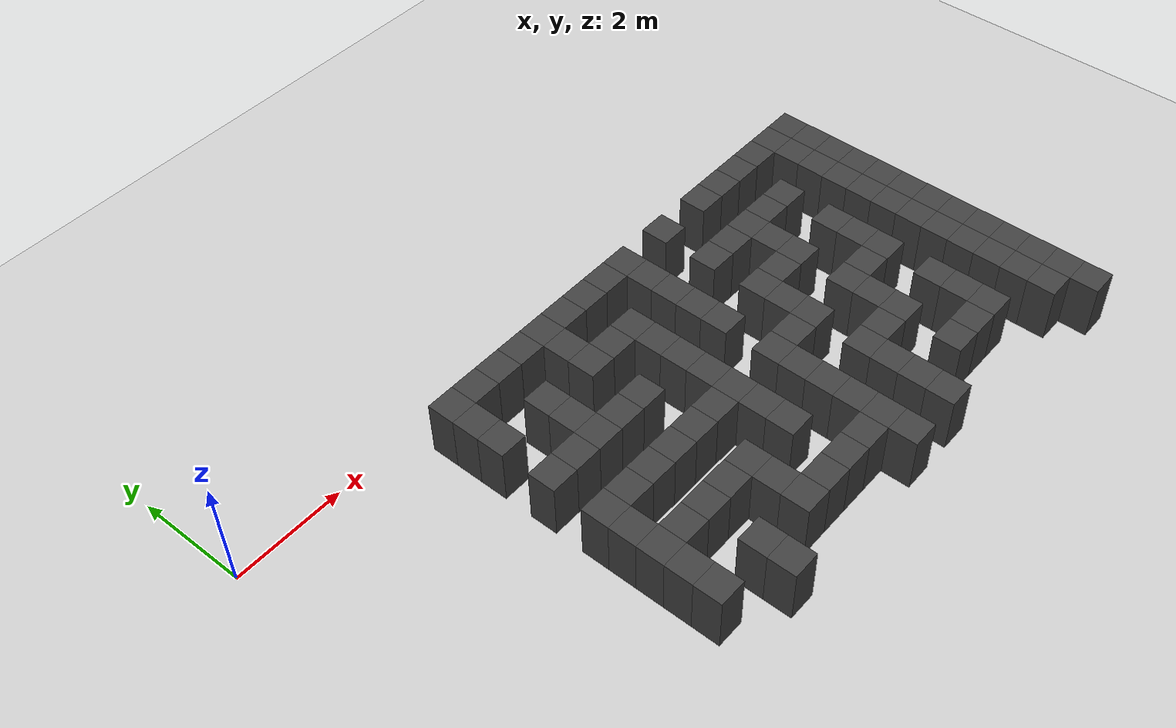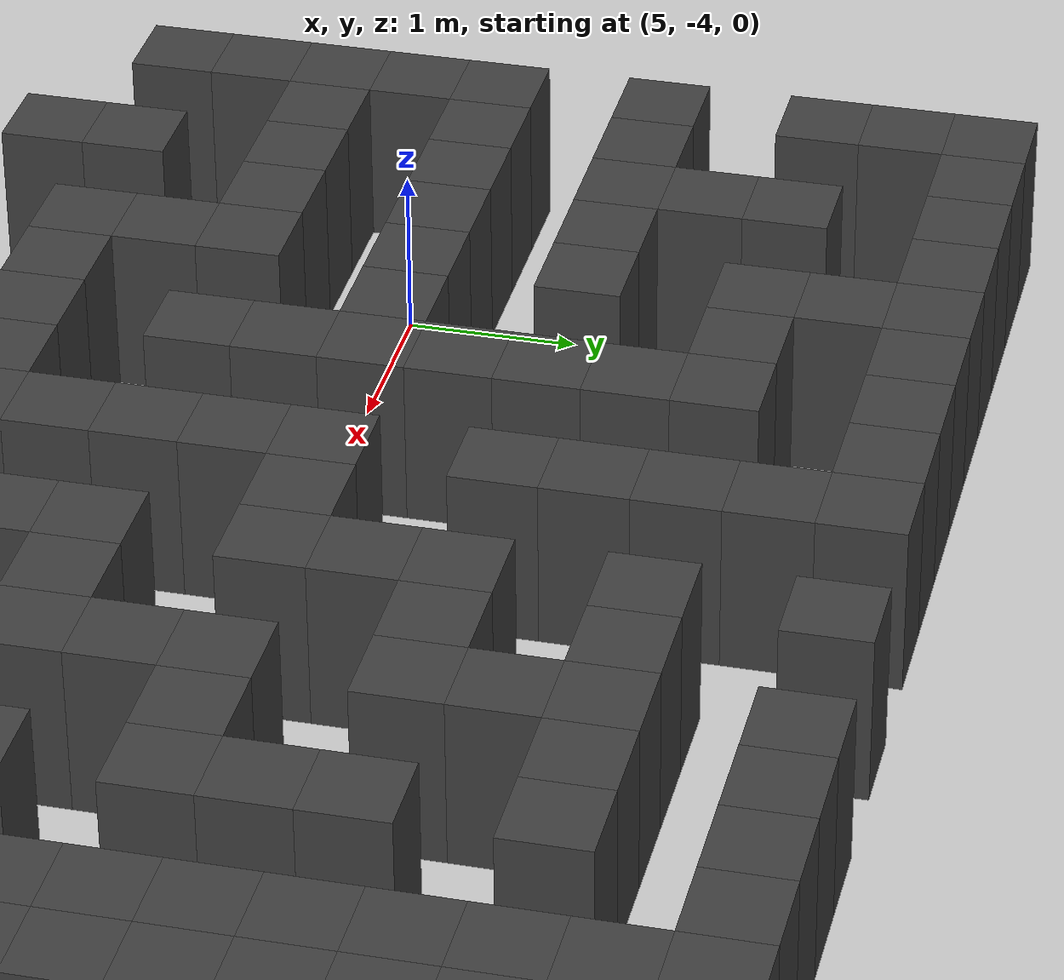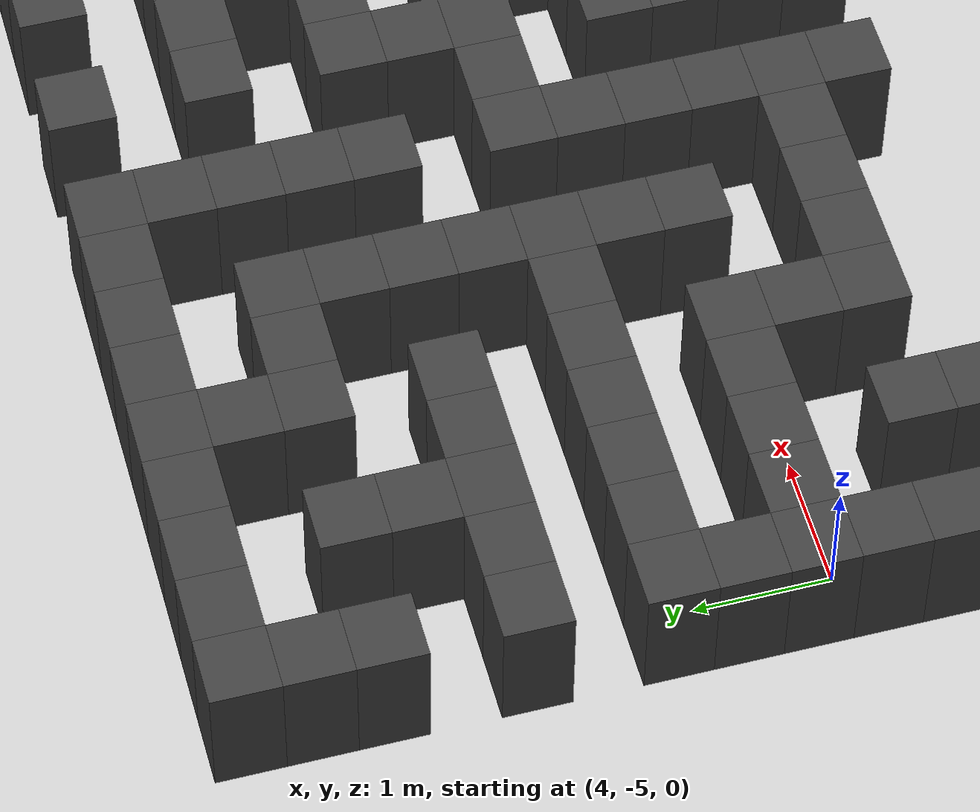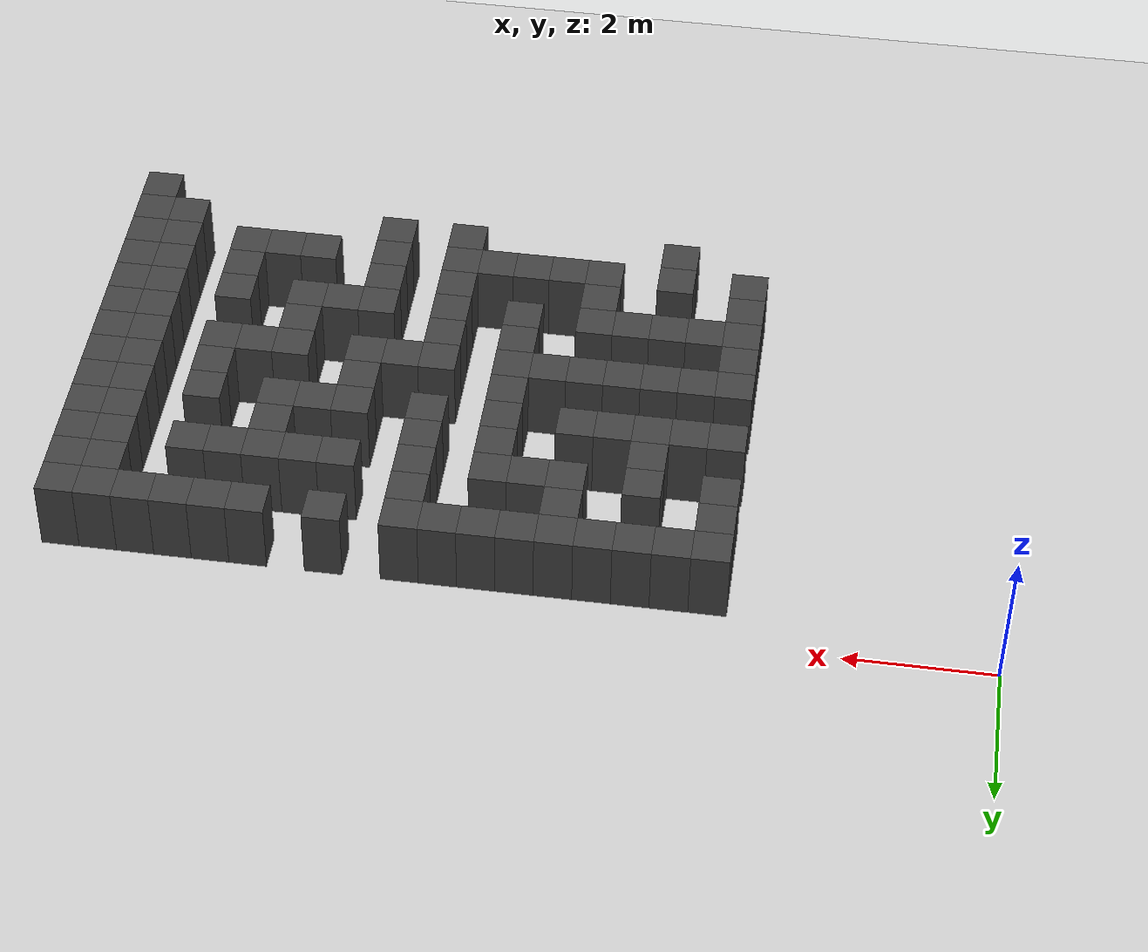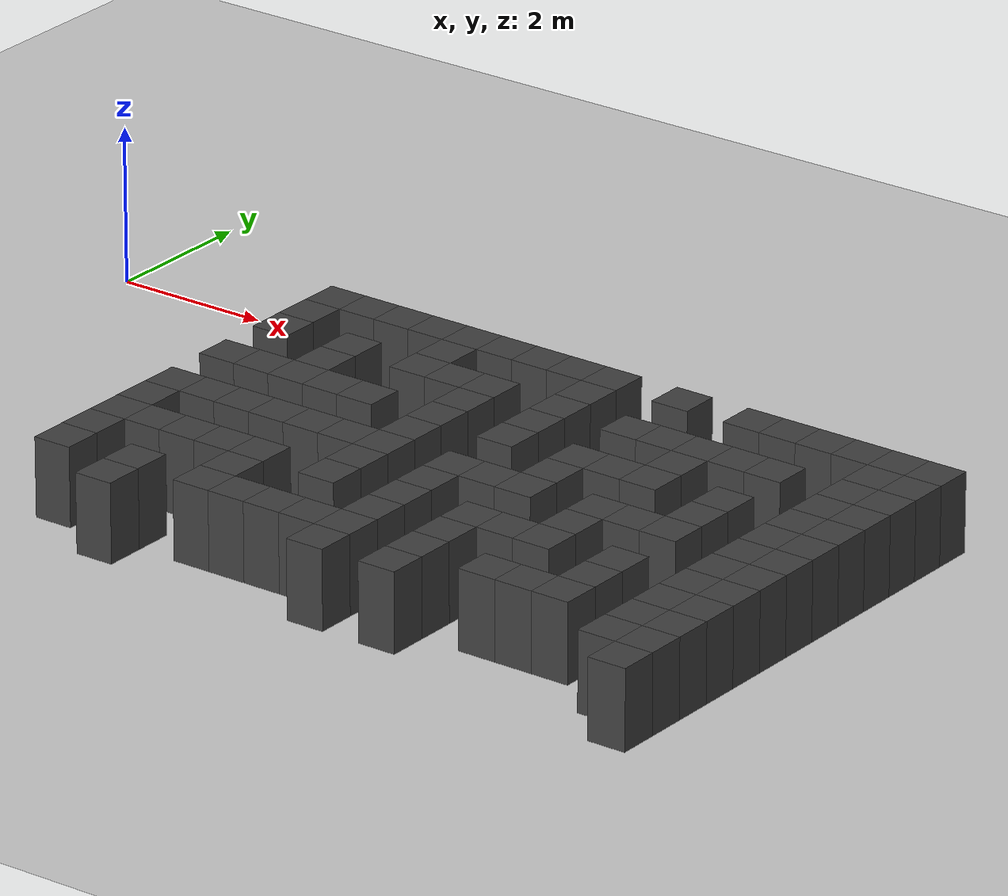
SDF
<sdf version="1.7">
 <world name="map_18313">
  <model name="ground_plane">
   <static>true</static>
   <link name="link">
    <collision name="collision">
     <geometry><plane><normal>0 0 1</normal><size>200 200</size></plane></geometry>
    </collision>
    <visual name="visual">
     <geometry><plane><normal>0 0 1</normal><size>200 200</size></plane></geometry>
     <material><ambient>0.8 0.8 0.8 1</ambient><diffuse>0.8 0.8 0.8 1</diffuse></material>
    </visual>
   </link>
  </model>
  <model name="maze_environment">
   <static>true</static>
   <link name="wall_677">
    <pose>3.750 -0.750 0.500 0 0 0</pose>
    <collision name="col"><geometry><box><size>0.5 0.5 1.0</size></box></geometry></collision>
    <visual name="vis">
     <geometry><box><size>0.5 0.5 1.0</size></box></geometry>
     <material><ambient>0.15 0.15 0.15 1</ambient><diffuse>0.25 0.25 0.25 1</diffuse></material>
    </visual>
   </link>
   <link name="wall_678">
    <pose>4.250 -0.750 0.500 0 0 0</pose>
    <collision name="col"><geometry><box><size>0.5 0.5 1.0</size></box></geometry></collision>
    <visual name="vis">
     <geometry><box><size>0.5 0.5 1.0</size></box></geometry>
     <material><ambient>0.15 0.15 0.15 1</ambient><diffuse>0.25 0.25 0.25 1</diffuse></material>
    </visual>
   </link>
   <link name="wall_679">
    <pose>4.750 -0.750 0.500 0 0 0</pose>
    <collision name="col"><geometry><box><size>0.5 0.5 1.0</size></box></geometry></collision>
    <visual name="vis">
     <geometry><box><size>0.5 0.5 1.0</size></box></geometry>
     <material><ambient>0.15 0.15 0.15 1</ambient><diffuse>0.25 0.25 0.25 1</diffuse></material>
    </visual>
   </link>
   <link name="wall_680">
    <pose>5.250 -0.750 0.500 0 0 0</pose>
    <collision name="col"><geometry><box><size>0.5 0.5 1.0</size></box></geometry></collision>
    <visual name="vis">
     <geometry><box><size>0.5 0.5 1.0</size></box></geometry>
     <material><ambient>0.15 0.15 0.15 1</ambient><diffuse>0.25 0.25 0.25 1</diffuse></material>
    </visual>
   </link>
   <link name="wall_681">
    <pose>5.750 -0.750 0.500 0 0 0</pose>
    <collision name="col"><geometry><box><size>0.5 0.5 1.0</size></box></geometry></collision>
    <visual name="vis">
     <geometry><box><size>0.5 0.5 1.0</size></box></geometry>
     <material><ambient>0.15 0.15 0.15 1</ambient><diffuse>0.25 0.25 0.25 1</diffuse></material>
    </visual>
   </link>
   <link name="wall_682">
    <pose>6.250 -0.750 0.500 0 0 0</pose>
    <collision name="col"><geometry><box><size>0.5 0.5 1.0</size></box></geometry></collision>
    <visual name="vis">
     <geometry><box><size>0.5 0.5 1.0</size></box></geometry>
     <material><ambient>0.15 0.15 0.15 1</ambient><diffuse>0.25 0.25 0.25 1</diffuse></material>
    </visual>
   </link>
   <link name="wall_683">
    <pose>6.750 -0.750 0.500 0 0 0</pose>
    <collision name="col"><geometry><box><size>0.5 0.5 1.0</size></box></geometry></collision>
    <visual name="vis">
     <geometry><box><size>0.5 0.5 1.0</size></box></geometry>
     <material><ambient>0.15 0.15 0.15 1</ambient><diffuse>0.25 0.25 0.25 1</diffuse></material>
    </visual>
   </link>
   <link name="wall_684">
    <pose>7.250 -0.750 0.500 0 0 0</pose>
    <collision name="col"><geometry><box><size>0.5 0.5 1.0</size></box></geometry></collision>
    <visual name="vis">
     <geometry><box><size>0.5 0.5 1.0</size></box></geometry>
     <material><ambient>0.15 0.15 0.15 1</ambient><diffuse>0.25 0.25 0.25 1</diffuse></material>
    </visual>
   </link>
   <link name="wall_685">
    <pose>7.750 -0.750 0.500 0 0 0</pose>
    <collision name="col"><geometry><box><size>0.5 0.5 1.0</size></box></geometry></collision>
    <visual name="vis">
     <geometry><box><size>0.5 0.5 1.0</size></box></geometry>
     <material><ambient>0.15 0.15 0.15 1</ambient><diffuse>0.25 0.25 0.25 1</diffuse></material>
    </visual>
   </link>
   <link name="wall_686">
    <pose>8.750 -0.750 0.500 0 0 0</pose>
    <collision name="col"><geometry><box><size>0.5 0.5 1.0</size></box></geometry></collision>
    <visual name="vis">
     <geometry><box><size>0.5 0.5 1.0</size></box></geometry>
     <material><ambient>0.15 0.15 0.15 1</ambient><diffuse>0.25 0.25 0.25 1</diffuse></material>
    </visual>
   </link>
   <link name="wall_687">
    <pose>9.750 -0.750 0.500 0 0 0</pose>
    <collision name="col"><geometry><box><size>0.5 0.5 1.0</size></box></geometry></collision>
    <visual name="vis">
     <geometry><box><size>0.5 0.5 1.0</size></box></geometry>
     <material><ambient>0.15 0.15 0.15 1</ambient><diffuse>0.25 0.25 0.25 1</diffuse></material>
    </visual>
   </link>
   <link name="wall_688">
    <pose>10.250 -0.750 0.500 0 0 0</pose>
    <collision name="col"><geometry><box><size>0.5 0.5 1.0</size></box></geometry></collision>
    <visual name="vis">
     <geometry><box><size>0.5 0.5 1.0</size></box></geometry>
     <material><ambient>0.15 0.15 0.15 1</ambient><diffuse>0.25 0.25 0.25 1</diffuse></material>
    </visual>
   </link>
   <link name="wall_689">
    <pose>10.750 -0.750 0.500 0 0 0</pose>
    <collision name="col"><geometry><box><size>0.5 0.5 1.0</size></box></geometry></collision>
    <visual name="vis">
     <geometry><box><size>0.5 0.5 1.0</size></box></geometry>
     <material><ambient>0.15 0.15 0.15 1</ambient><diffuse>0.25 0.25 0.25 1</diffuse></material>
    </visual>
   </link>
   <link name="wall_690">
    <pose>11.250 -0.750 0.500 0 0 0</pose>
    <collision name="col"><geometry><box><size>0.5 0.5 1.0</size></box></geometry></collision>
    <visual name="vis">
     <geometry><box><size>0.5 0.5 1.0</size></box></geometry>
     <material><ambient>0.15 0.15 0.15 1</ambient><diffuse>0.25 0.25 0.25 1</diffuse></material>
    </visual>
   </link>
   <link name="wall_691">
    <pose>11.750 -0.750 0.500 0 0 0</pose>
    <collision name="col"><geometry><box><size>0.5 0.5 1.0</size></box></geometry></collision>
    <visual name="vis">
     <geometry><box><size>0.5 0.5 1.0</size></box></geometry>
     <material><ambient>0.15 0.15 0.15 1</ambient><diffuse>0.25 0.25 0.25 1</diffuse></material>
    </visual>
   </link>
   <link name="wall_692">
    <pose>12.250 -0.750 0.500 0 0 0</pose>
    <collision name="col"><geometry><box><size>0.5 0.5 1.0</size></box></geometry></collision>
    <visual name="vis">
     <geometry><box><size>0.5 0.5 1.0</size></box></geometry>
     <material><ambient>0.15 0.15 0.15 1</ambient><diffuse>0.25 0.25 0.25 1</diffuse></material>
    </visual>
   </link>
   <link name="wall_700">
    <pose>3.750 -1.250 0.500 0 0 0</pose>
    <collision name="col"><geometry><box><size>0.5 0.5 1.0</size></box></geometry></collision>
    <visual name="vis">
     <geometry><box><size>0.5 0.5 1.0</size></box></geometry>
     <material><ambient>0.15 0.15 0.15 1</ambient><diffuse>0.25 0.25 0.25 1</diffuse></material>
    </visual>
   </link>
   <link name="wall_701">
    <pose>5.750 -1.250 0.500 0 0 0</pose>
    <collision name="col"><geometry><box><size>0.5 0.5 1.0</size></box></geometry></collision>
    <visual name="vis">
     <geometry><box><size>0.5 0.5 1.0</size></box></geometry>
     <material><ambient>0.15 0.15 0.15 1</ambient><diffuse>0.25 0.25 0.25 1</diffuse></material>
    </visual>
   </link>
   <link name="wall_702">
    <pose>7.750 -1.250 0.500 0 0 0</pose>
    <collision name="col"><geometry><box><size>0.5 0.5 1.0</size></box></geometry></collision>
    <visual name="vis">
     <geometry><box><size>0.5 0.5 1.0</size></box></geometry>
     <material><ambient>0.15 0.15 0.15 1</ambient><diffuse>0.25 0.25 0.25 1</diffuse></material>
    </visual>
   </link>
   <link name="wall_703">
    <pose>11.750 -1.250 0.500 0 0 0</pose>
    <collision name="col"><geometry><box><size>0.5 0.5 1.0</size></box></geometry></collision>
    <visual name="vis">
     <geometry><box><size>0.5 0.5 1.0</size></box></geometry>
     <material><ambient>0.15 0.15 0.15 1</ambient><diffuse>0.25 0.25 0.25 1</diffuse></material>
    </visual>
   </link>
   <link name="wall_704">
    <pose>12.250 -1.250 0.500 0 0 0</pose>
    <collision name="col"><geometry><box><size>0.5 0.5 1.0</size></box></geometry></collision>
    <visual name="vis">
     <geometry><box><size>0.5 0.5 1.0</size></box></geometry>
     <material><ambient>0.15 0.15 0.15 1</ambient><diffuse>0.25 0.25 0.25 1</diffuse></material>
    </visual>
   </link>
   <link name="wall_729">
    <pose>3.750 -1.750 0.500 0 0 0</pose>
    <collision name="col"><geometry><box><size>0.5 0.5 1.0</size></box></geometry></collision>
    <visual name="vis">
     <geometry><box><size>0.5 0.5 1.0</size></box></geometry>
     <material><ambient>0.15 0.15 0.15 1</ambient><diffuse>0.25 0.25 0.25 1</diffuse></material>
    </visual>
   </link>
   <link name="wall_730">
    <pose>4.750 -1.750 0.500 0 0 0</pose>
    <collision name="col"><geometry><box><size>0.5 0.5 1.0</size></box></geometry></collision>
    <visual name="vis">
     <geometry><box><size>0.5 0.5 1.0</size></box></geometry>
     <material><ambient>0.15 0.15 0.15 1</ambient><diffuse>0.25 0.25 0.25 1</diffuse></material>
    </visual>
   </link>
   <link name="wall_731">
    <pose>5.750 -1.750 0.500 0 0 0</pose>
    <collision name="col"><geometry><box><size>0.5 0.5 1.0</size></box></geometry></collision>
    <visual name="vis">
     <geometry><box><size>0.5 0.5 1.0</size></box></geometry>
     <material><ambient>0.15 0.15 0.15 1</ambient><diffuse>0.25 0.25 0.25 1</diffuse></material>
    </visual>
   </link>
   <link name="wall_732">
    <pose>6.250 -1.750 0.500 0 0 0</pose>
    <collision name="col"><geometry><box><size>0.5 0.5 1.0</size></box></geometry></collision>
    <visual name="vis">
     <geometry><box><size>0.5 0.5 1.0</size></box></geometry>
     <material><ambient>0.15 0.15 0.15 1</ambient><diffuse>0.25 0.25 0.25 1</diffuse></material>
    </visual>
   </link>
   <link name="wall_733">
    <pose>6.750 -1.750 0.500 0 0 0</pose>
    <collision name="col"><geometry><box><size>0.5 0.5 1.0</size></box></geometry></collision>
    <visual name="vis">
     <geometry><box><size>0.5 0.5 1.0</size></box></geometry>
     <material><ambient>0.15 0.15 0.15 1</ambient><diffuse>0.25 0.25 0.25 1</diffuse></material>
    </visual>
   </link>
   <link name="wall_734">
    <pose>7.750 -1.750 0.500 0 0 0</pose>
    <collision name="col"><geometry><box><size>0.5 0.5 1.0</size></box></geometry></collision>
    <visual name="vis">
     <geometry><box><size>0.5 0.5 1.0</size></box></geometry>
     <material><ambient>0.15 0.15 0.15 1</ambient><diffuse>0.25 0.25 0.25 1</diffuse></material>
    </visual>
   </link>
   <link name="wall_735">
    <pose>8.750 -1.750 0.500 0 0 0</pose>
    <collision name="col"><geometry><box><size>0.5 0.5 1.0</size></box></geometry></collision>
    <visual name="vis">
     <geometry><box><size>0.5 0.5 1.0</size></box></geometry>
     <material><ambient>0.15 0.15 0.15 1</ambient><diffuse>0.25 0.25 0.25 1</diffuse></material>
    </visual>
   </link>
   <link name="wall_736">
    <pose>9.250 -1.750 0.500 0 0 0</pose>
    <collision name="col"><geometry><box><size>0.5 0.5 1.0</size></box></geometry></collision>
    <visual name="vis">
     <geometry><box><size>0.5 0.5 1.0</size></box></geometry>
     <material><ambient>0.15 0.15 0.15 1</ambient><diffuse>0.25 0.25 0.25 1</diffuse></material>
    </visual>
   </link>
   <link name="wall_737">
    <pose>9.750 -1.750 0.500 0 0 0</pose>
    <collision name="col"><geometry><box><size>0.5 0.5 1.0</size></box></geometry></collision>
    <visual name="vis">
     <geometry><box><size>0.5 0.5 1.0</size></box></geometry>
     <material><ambient>0.15 0.15 0.15 1</ambient><diffuse>0.25 0.25 0.25 1</diffuse></material>
    </visual>
   </link>
   <link name="wall_738">
    <pose>10.250 -1.750 0.500 0 0 0</pose>
    <collision name="col"><geometry><box><size>0.5 0.5 1.0</size></box></geometry></collision>
    <visual name="vis">
     <geometry><box><size>0.5 0.5 1.0</size></box></geometry>
     <material><ambient>0.15 0.15 0.15 1</ambient><diffuse>0.25 0.25 0.25 1</diffuse></material>
    </visual>
   </link>
   <link name="wall_739">
    <pose>10.750 -1.750 0.500 0 0 0</pose>
    <collision name="col"><geometry><box><size>0.5 0.5 1.0</size></box></geometry></collision>
    <visual name="vis">
     <geometry><box><size>0.5 0.5 1.0</size></box></geometry>
     <material><ambient>0.15 0.15 0.15 1</ambient><diffuse>0.25 0.25 0.25 1</diffuse></material>
    </visual>
   </link>
   <link name="wall_740">
    <pose>11.750 -1.750 0.500 0 0 0</pose>
    <collision name="col"><geometry><box><size>0.5 0.5 1.0</size></box></geometry></collision>
    <visual name="vis">
     <geometry><box><size>0.5 0.5 1.0</size></box></geometry>
     <material><ambient>0.15 0.15 0.15 1</ambient><diffuse>0.25 0.25 0.25 1</diffuse></material>
    </visual>
   </link>
   <link name="wall_741">
    <pose>12.250 -1.750 0.500 0 0 0</pose>
    <collision name="col"><geometry><box><size>0.5 0.5 1.0</size></box></geometry></collision>
    <visual name="vis">
     <geometry><box><size>0.5 0.5 1.0</size></box></geometry>
     <material><ambient>0.15 0.15 0.15 1</ambient><diffuse>0.25 0.25 0.25 1</diffuse></material>
    </visual>
   </link>
   <link name="wall_748">
    <pose>4.750 -2.250 0.500 0 0 0</pose>
    <collision name="col"><geometry><box><size>0.5 0.5 1.0</size></box></geometry></collision>
    <visual name="vis">
     <geometry><box><size>0.5 0.5 1.0</size></box></geometry>
     <material><ambient>0.15 0.15 0.15 1</ambient><diffuse>0.25 0.25 0.25 1</diffuse></material>
    </visual>
   </link>
   <link name="wall_749">
    <pose>6.750 -2.250 0.500 0 0 0</pose>
    <collision name="col"><geometry><box><size>0.5 0.5 1.0</size></box></geometry></collision>
    <visual name="vis">
     <geometry><box><size>0.5 0.5 1.0</size></box></geometry>
     <material><ambient>0.15 0.15 0.15 1</ambient><diffuse>0.25 0.25 0.25 1</diffuse></material>
    </visual>
   </link>
   <link name="wall_750">
    <pose>7.750 -2.250 0.500 0 0 0</pose>
    <collision name="col"><geometry><box><size>0.5 0.5 1.0</size></box></geometry></collision>
    <visual name="vis">
     <geometry><box><size>0.5 0.5 1.0</size></box></geometry>
     <material><ambient>0.15 0.15 0.15 1</ambient><diffuse>0.25 0.25 0.25 1</diffuse></material>
    </visual>
   </link>
   <link name="wall_751">
    <pose>9.750 -2.250 0.500 0 0 0</pose>
    <collision name="col"><geometry><box><size>0.5 0.5 1.0</size></box></geometry></collision>
    <visual name="vis">
     <geometry><box><size>0.5 0.5 1.0</size></box></geometry>
     <material><ambient>0.15 0.15 0.15 1</ambient><diffuse>0.25 0.25 0.25 1</diffuse></material>
    </visual>
   </link>
   <link name="wall_752">
    <pose>11.750 -2.250 0.500 0 0 0</pose>
    <collision name="col"><geometry><box><size>0.5 0.5 1.0</size></box></geometry></collision>
    <visual name="vis">
     <geometry><box><size>0.5 0.5 1.0</size></box></geometry>
     <material><ambient>0.15 0.15 0.15 1</ambient><diffuse>0.25 0.25 0.25 1</diffuse></material>
    </visual>
   </link>
   <link name="wall_753">
    <pose>12.250 -2.250 0.500 0 0 0</pose>
    <collision name="col"><geometry><box><size>0.5 0.5 1.0</size></box></geometry></collision>
    <visual name="vis">
     <geometry><box><size>0.5 0.5 1.0</size></box></geometry>
     <material><ambient>0.15 0.15 0.15 1</ambient><diffuse>0.25 0.25 0.25 1</diffuse></material>
    </visual>
   </link>
   <link name="wall_779">
    <pose>3.750 -2.750 0.500 0 0 0</pose>
    <collision name="col"><geometry><box><size>0.5 0.5 1.0</size></box></geometry></collision>
    <visual name="vis">
     <geometry><box><size>0.5 0.5 1.0</size></box></geometry>
     <material><ambient>0.15 0.15 0.15 1</ambient><diffuse>0.25 0.25 0.25 1</diffuse></material>
    </visual>
   </link>
   <link name="wall_780">
    <pose>4.250 -2.750 0.500 0 0 0</pose>
    <collision name="col"><geometry><box><size>0.5 0.5 1.0</size></box></geometry></collision>
    <visual name="vis">
     <geometry><box><size>0.5 0.5 1.0</size></box></geometry>
     <material><ambient>0.15 0.15 0.15 1</ambient><diffuse>0.25 0.25 0.25 1</diffuse></material>
    </visual>
   </link>
   <link name="wall_781">
    <pose>4.750 -2.750 0.500 0 0 0</pose>
    <collision name="col"><geometry><box><size>0.5 0.5 1.0</size></box></geometry></collision>
    <visual name="vis">
     <geometry><box><size>0.5 0.5 1.0</size></box></geometry>
     <material><ambient>0.15 0.15 0.15 1</ambient><diffuse>0.25 0.25 0.25 1</diffuse></material>
    </visual>
   </link>
   <link name="wall_782">
    <pose>5.250 -2.750 0.500 0 0 0</pose>
    <collision name="col"><geometry><box><size>0.5 0.5 1.0</size></box></geometry></collision>
    <visual name="vis">
     <geometry><box><size>0.5 0.5 1.0</size></box></geometry>
     <material><ambient>0.15 0.15 0.15 1</ambient><diffuse>0.25 0.25 0.25 1</diffuse></material>
    </visual>
   </link>
   <link name="wall_783">
    <pose>5.750 -2.750 0.500 0 0 0</pose>
    <collision name="col"><geometry><box><size>0.5 0.5 1.0</size></box></geometry></collision>
    <visual name="vis">
     <geometry><box><size>0.5 0.5 1.0</size></box></geometry>
     <material><ambient>0.15 0.15 0.15 1</ambient><diffuse>0.25 0.25 0.25 1</diffuse></material>
    </visual>
   </link>
   <link name="wall_784">
    <pose>6.750 -2.750 0.500 0 0 0</pose>
    <collision name="col"><geometry><box><size>0.5 0.5 1.0</size></box></geometry></collision>
    <visual name="vis">
     <geometry><box><size>0.5 0.5 1.0</size></box></geometry>
     <material><ambient>0.15 0.15 0.15 1</ambient><diffuse>0.25 0.25 0.25 1</diffuse></material>
    </visual>
   </link>
   <link name="wall_785">
    <pose>7.750 -2.750 0.500 0 0 0</pose>
    <collision name="col"><geometry><box><size>0.5 0.5 1.0</size></box></geometry></collision>
    <visual name="vis">
     <geometry><box><size>0.5 0.5 1.0</size></box></geometry>
     <material><ambient>0.15 0.15 0.15 1</ambient><diffuse>0.25 0.25 0.25 1</diffuse></material>
    </visual>
   </link>
   <link name="wall_786">
    <pose>8.750 -2.750 0.500 0 0 0</pose>
    <collision name="col"><geometry><box><size>0.5 0.5 1.0</size></box></geometry></collision>
    <visual name="vis">
     <geometry><box><size>0.5 0.5 1.0</size></box></geometry>
     <material><ambient>0.15 0.15 0.15 1</ambient><diffuse>0.25 0.25 0.25 1</diffuse></material>
    </visual>
   </link>
   <link name="wall_787">
    <pose>9.250 -2.750 0.500 0 0 0</pose>
    <collision name="col"><geometry><box><size>0.5 0.5 1.0</size></box></geometry></collision>
    <visual name="vis">
     <geometry><box><size>0.5 0.5 1.0</size></box></geometry>
     <material><ambient>0.15 0.15 0.15 1</ambient><diffuse>0.25 0.25 0.25 1</diffuse></material>
    </visual>
   </link>
   <link name="wall_788">
    <pose>9.750 -2.750 0.500 0 0 0</pose>
    <collision name="col"><geometry><box><size>0.5 0.5 1.0</size></box></geometry></collision>
    <visual name="vis">
     <geometry><box><size>0.5 0.5 1.0</size></box></geometry>
     <material><ambient>0.15 0.15 0.15 1</ambient><diffuse>0.25 0.25 0.25 1</diffuse></material>
    </visual>
   </link>
   <link name="wall_789">
    <pose>10.750 -2.750 0.500 0 0 0</pose>
    <collision name="col"><geometry><box><size>0.5 0.5 1.0</size></box></geometry></collision>
    <visual name="vis">
     <geometry><box><size>0.5 0.5 1.0</size></box></geometry>
     <material><ambient>0.15 0.15 0.15 1</ambient><diffuse>0.25 0.25 0.25 1</diffuse></material>
    </visual>
   </link>
   <link name="wall_790">
    <pose>11.750 -2.750 0.500 0 0 0</pose>
    <collision name="col"><geometry><box><size>0.5 0.5 1.0</size></box></geometry></collision>
    <visual name="vis">
     <geometry><box><size>0.5 0.5 1.0</size></box></geometry>
     <material><ambient>0.15 0.15 0.15 1</ambient><diffuse>0.25 0.25 0.25 1</diffuse></material>
    </visual>
   </link>
   <link name="wall_791">
    <pose>12.250 -2.750 0.500 0 0 0</pose>
    <collision name="col"><geometry><box><size>0.5 0.5 1.0</size></box></geometry></collision>
    <visual name="vis">
     <geometry><box><size>0.5 0.5 1.0</size></box></geometry>
     <material><ambient>0.15 0.15 0.15 1</ambient><diffuse>0.25 0.25 0.25 1</diffuse></material>
    </visual>
   </link>
   <link name="wall_800">
    <pose>6.750 -3.250 0.500 0 0 0</pose>
    <collision name="col"><geometry><box><size>0.5 0.5 1.0</size></box></geometry></collision>
    <visual name="vis">
     <geometry><box><size>0.5 0.5 1.0</size></box></geometry>
     <material><ambient>0.15 0.15 0.15 1</ambient><diffuse>0.25 0.25 0.25 1</diffuse></material>
    </visual>
   </link>
   <link name="wall_801">
    <pose>8.750 -3.250 0.500 0 0 0</pose>
    <collision name="col"><geometry><box><size>0.5 0.5 1.0</size></box></geometry></collision>
    <visual name="vis">
     <geometry><box><size>0.5 0.5 1.0</size></box></geometry>
     <material><ambient>0.15 0.15 0.15 1</ambient><diffuse>0.25 0.25 0.25 1</diffuse></material>
    </visual>
   </link>
   <link name="wall_802">
    <pose>10.750 -3.250 0.500 0 0 0</pose>
    <collision name="col"><geometry><box><size>0.5 0.5 1.0</size></box></geometry></collision>
    <visual name="vis">
     <geometry><box><size>0.5 0.5 1.0</size></box></geometry>
     <material><ambient>0.15 0.15 0.15 1</ambient><diffuse>0.25 0.25 0.25 1</diffuse></material>
    </visual>
   </link>
   <link name="wall_803">
    <pose>11.750 -3.250 0.500 0 0 0</pose>
    <collision name="col"><geometry><box><size>0.5 0.5 1.0</size></box></geometry></collision>
    <visual name="vis">
     <geometry><box><size>0.5 0.5 1.0</size></box></geometry>
     <material><ambient>0.15 0.15 0.15 1</ambient><diffuse>0.25 0.25 0.25 1</diffuse></material>
    </visual>
   </link>
   <link name="wall_804">
    <pose>12.250 -3.250 0.500 0 0 0</pose>
    <collision name="col"><geometry><box><size>0.5 0.5 1.0</size></box></geometry></collision>
    <visual name="vis">
     <geometry><box><size>0.5 0.5 1.0</size></box></geometry>
     <material><ambient>0.15 0.15 0.15 1</ambient><diffuse>0.25 0.25 0.25 1</diffuse></material>
    </visual>
   </link>
   <link name="wall_826">
    <pose>3.750 -3.750 0.500 0 0 0</pose>
    <collision name="col"><geometry><box><size>0.5 0.5 1.0</size></box></geometry></collision>
    <visual name="vis">
     <geometry><box><size>0.5 0.5 1.0</size></box></geometry>
     <material><ambient>0.15 0.15 0.15 1</ambient><diffuse>0.25 0.25 0.25 1</diffuse></material>
    </visual>
   </link>
   <link name="wall_827">
    <pose>4.250 -3.750 0.500 0 0 0</pose>
    <collision name="col"><geometry><box><size>0.5 0.5 1.0</size></box></geometry></collision>
    <visual name="vis">
     <geometry><box><size>0.5 0.5 1.0</size></box></geometry>
     <material><ambient>0.15 0.15 0.15 1</ambient><diffuse>0.25 0.25 0.25 1</diffuse></material>
    </visual>
   </link>
   <link name="wall_828">
    <pose>4.750 -3.750 0.500 0 0 0</pose>
    <collision name="col"><geometry><box><size>0.5 0.5 1.0</size></box></geometry></collision>
    <visual name="vis">
     <geometry><box><size>0.5 0.5 1.0</size></box></geometry>
     <material><ambient>0.15 0.15 0.15 1</ambient><diffuse>0.25 0.25 0.25 1</diffuse></material>
    </visual>
   </link>
   <link name="wall_829">
    <pose>5.250 -3.750 0.500 0 0 0</pose>
    <collision name="col"><geometry><box><size>0.5 0.5 1.0</size></box></geometry></collision>
    <visual name="vis">
     <geometry><box><size>0.5 0.5 1.0</size></box></geometry>
     <material><ambient>0.15 0.15 0.15 1</ambient><diffuse>0.25 0.25 0.25 1</diffuse></material>
    </visual>
   </link>
   <link name="wall_830">
    <pose>5.750 -3.750 0.500 0 0 0</pose>
    <collision name="col"><geometry><box><size>0.5 0.5 1.0</size></box></geometry></collision>
    <visual name="vis">
     <geometry><box><size>0.5 0.5 1.0</size></box></geometry>
     <material><ambient>0.15 0.15 0.15 1</ambient><diffuse>0.25 0.25 0.25 1</diffuse></material>
    </visual>
   </link>
   <link name="wall_831">
    <pose>6.250 -3.750 0.500 0 0 0</pose>
    <collision name="col"><geometry><box><size>0.5 0.5 1.0</size></box></geometry></collision>
    <visual name="vis">
     <geometry><box><size>0.5 0.5 1.0</size></box></geometry>
     <material><ambient>0.15 0.15 0.15 1</ambient><diffuse>0.25 0.25 0.25 1</diffuse></material>
    </visual>
   </link>
   <link name="wall_832">
    <pose>6.750 -3.750 0.500 0 0 0</pose>
    <collision name="col"><geometry><box><size>0.5 0.5 1.0</size></box></geometry></collision>
    <visual name="vis">
     <geometry><box><size>0.5 0.5 1.0</size></box></geometry>
     <material><ambient>0.15 0.15 0.15 1</ambient><diffuse>0.25 0.25 0.25 1</diffuse></material>
    </visual>
   </link>
   <link name="wall_833">
    <pose>7.750 -3.750 0.500 0 0 0</pose>
    <collision name="col"><geometry><box><size>0.5 0.5 1.0</size></box></geometry></collision>
    <visual name="vis">
     <geometry><box><size>0.5 0.5 1.0</size></box></geometry>
     <material><ambient>0.15 0.15 0.15 1</ambient><diffuse>0.25 0.25 0.25 1</diffuse></material>
    </visual>
   </link>
   <link name="wall_834">
    <pose>8.250 -3.750 0.500 0 0 0</pose>
    <collision name="col"><geometry><box><size>0.5 0.5 1.0</size></box></geometry></collision>
    <visual name="vis">
     <geometry><box><size>0.5 0.5 1.0</size></box></geometry>
     <material><ambient>0.15 0.15 0.15 1</ambient><diffuse>0.25 0.25 0.25 1</diffuse></material>
    </visual>
   </link>
   <link name="wall_835">
    <pose>8.750 -3.750 0.500 0 0 0</pose>
    <collision name="col"><geometry><box><size>0.5 0.5 1.0</size></box></geometry></collision>
    <visual name="vis">
     <geometry><box><size>0.5 0.5 1.0</size></box></geometry>
     <material><ambient>0.15 0.15 0.15 1</ambient><diffuse>0.25 0.25 0.25 1</diffuse></material>
    </visual>
   </link>
   <link name="wall_836">
    <pose>9.750 -3.750 0.500 0 0 0</pose>
    <collision name="col"><geometry><box><size>0.5 0.5 1.0</size></box></geometry></collision>
    <visual name="vis">
     <geometry><box><size>0.5 0.5 1.0</size></box></geometry>
     <material><ambient>0.15 0.15 0.15 1</ambient><diffuse>0.25 0.25 0.25 1</diffuse></material>
    </visual>
   </link>
   <link name="wall_837">
    <pose>10.250 -3.750 0.500 0 0 0</pose>
    <collision name="col"><geometry><box><size>0.5 0.5 1.0</size></box></geometry></collision>
    <visual name="vis">
     <geometry><box><size>0.5 0.5 1.0</size></box></geometry>
     <material><ambient>0.15 0.15 0.15 1</ambient><diffuse>0.25 0.25 0.25 1</diffuse></material>
    </visual>
   </link>
   <link name="wall_838">
    <pose>10.750 -3.750 0.500 0 0 0</pose>
    <collision name="col"><geometry><box><size>0.5 0.5 1.0</size></box></geometry></collision>
    <visual name="vis">
     <geometry><box><size>0.5 0.5 1.0</size></box></geometry>
     <material><ambient>0.15 0.15 0.15 1</ambient><diffuse>0.25 0.25 0.25 1</diffuse></material>
    </visual>
   </link>
   <link name="wall_839">
    <pose>11.750 -3.750 0.500 0 0 0</pose>
    <collision name="col"><geometry><box><size>0.5 0.5 1.0</size></box></geometry></collision>
    <visual name="vis">
     <geometry><box><size>0.5 0.5 1.0</size></box></geometry>
     <material><ambient>0.15 0.15 0.15 1</ambient><diffuse>0.25 0.25 0.25 1</diffuse></material>
    </visual>
   </link>
   <link name="wall_840">
    <pose>12.250 -3.750 0.500 0 0 0</pose>
    <collision name="col"><geometry><box><size>0.5 0.5 1.0</size></box></geometry></collision>
    <visual name="vis">
     <geometry><box><size>0.5 0.5 1.0</size></box></geometry>
     <material><ambient>0.15 0.15 0.15 1</ambient><diffuse>0.25 0.25 0.25 1</diffuse></material>
    </visual>
   </link>
   <link name="wall_849">
    <pose>3.750 -4.250 0.500 0 0 0</pose>
    <collision name="col"><geometry><box><size>0.5 0.5 1.0</size></box></geometry></collision>
    <visual name="vis">
     <geometry><box><size>0.5 0.5 1.0</size></box></geometry>
     <material><ambient>0.15 0.15 0.15 1</ambient><diffuse>0.25 0.25 0.25 1</diffuse></material>
    </visual>
   </link>
   <link name="wall_850">
    <pose>6.750 -4.250 0.500 0 0 0</pose>
    <collision name="col"><geometry><box><size>0.5 0.5 1.0</size></box></geometry></collision>
    <visual name="vis">
     <geometry><box><size>0.5 0.5 1.0</size></box></geometry>
     <material><ambient>0.15 0.15 0.15 1</ambient><diffuse>0.25 0.25 0.25 1</diffuse></material>
    </visual>
   </link>
   <link name="wall_851">
    <pose>7.750 -4.250 0.500 0 0 0</pose>
    <collision name="col"><geometry><box><size>0.5 0.5 1.0</size></box></geometry></collision>
    <visual name="vis">
     <geometry><box><size>0.5 0.5 1.0</size></box></geometry>
     <material><ambient>0.15 0.15 0.15 1</ambient><diffuse>0.25 0.25 0.25 1</diffuse></material>
    </visual>
   </link>
   <link name="wall_852">
    <pose>9.750 -4.250 0.500 0 0 0</pose>
    <collision name="col"><geometry><box><size>0.5 0.5 1.0</size></box></geometry></collision>
    <visual name="vis">
     <geometry><box><size>0.5 0.5 1.0</size></box></geometry>
     <material><ambient>0.15 0.15 0.15 1</ambient><diffuse>0.25 0.25 0.25 1</diffuse></material>
    </visual>
   </link>
   <link name="wall_853">
    <pose>11.750 -4.250 0.500 0 0 0</pose>
    <collision name="col"><geometry><box><size>0.5 0.5 1.0</size></box></geometry></collision>
    <visual name="vis">
     <geometry><box><size>0.5 0.5 1.0</size></box></geometry>
     <material><ambient>0.15 0.15 0.15 1</ambient><diffuse>0.25 0.25 0.25 1</diffuse></material>
    </visual>
   </link>
   <link name="wall_854">
    <pose>12.250 -4.250 0.500 0 0 0</pose>
    <collision name="col"><geometry><box><size>0.5 0.5 1.0</size></box></geometry></collision>
    <visual name="vis">
     <geometry><box><size>0.5 0.5 1.0</size></box></geometry>
     <material><ambient>0.15 0.15 0.15 1</ambient><diffuse>0.25 0.25 0.25 1</diffuse></material>
    </visual>
   </link>
   <link name="wall_876">
    <pose>3.750 -4.750 0.500 0 0 0</pose>
    <collision name="col"><geometry><box><size>0.5 0.5 1.0</size></box></geometry></collision>
    <visual name="vis">
     <geometry><box><size>0.5 0.5 1.0</size></box></geometry>
     <material><ambient>0.15 0.15 0.15 1</ambient><diffuse>0.25 0.25 0.25 1</diffuse></material>
    </visual>
   </link>
   <link name="wall_877">
    <pose>4.250 -4.750 0.500 0 0 0</pose>
    <collision name="col"><geometry><box><size>0.5 0.5 1.0</size></box></geometry></collision>
    <visual name="vis">
     <geometry><box><size>0.5 0.5 1.0</size></box></geometry>
     <material><ambient>0.15 0.15 0.15 1</ambient><diffuse>0.25 0.25 0.25 1</diffuse></material>
    </visual>
   </link>
   <link name="wall_878">
    <pose>4.750 -4.750 0.500 0 0 0</pose>
    <collision name="col"><geometry><box><size>0.5 0.5 1.0</size></box></geometry></collision>
    <visual name="vis">
     <geometry><box><size>0.5 0.5 1.0</size></box></geometry>
     <material><ambient>0.15 0.15 0.15 1</ambient><diffuse>0.25 0.25 0.25 1</diffuse></material>
    </visual>
   </link>
   <link name="wall_879">
    <pose>5.250 -4.750 0.500 0 0 0</pose>
    <collision name="col"><geometry><box><size>0.5 0.5 1.0</size></box></geometry></collision>
    <visual name="vis">
     <geometry><box><size>0.5 0.5 1.0</size></box></geometry>
     <material><ambient>0.15 0.15 0.15 1</ambient><diffuse>0.25 0.25 0.25 1</diffuse></material>
    </visual>
   </link>
   <link name="wall_880">
    <pose>5.750 -4.750 0.500 0 0 0</pose>
    <collision name="col"><geometry><box><size>0.5 0.5 1.0</size></box></geometry></collision>
    <visual name="vis">
     <geometry><box><size>0.5 0.5 1.0</size></box></geometry>
     <material><ambient>0.15 0.15 0.15 1</ambient><diffuse>0.25 0.25 0.25 1</diffuse></material>
    </visual>
   </link>
   <link name="wall_881">
    <pose>6.750 -4.750 0.500 0 0 0</pose>
    <collision name="col"><geometry><box><size>0.5 0.5 1.0</size></box></geometry></collision>
    <visual name="vis">
     <geometry><box><size>0.5 0.5 1.0</size></box></geometry>
     <material><ambient>0.15 0.15 0.15 1</ambient><diffuse>0.25 0.25 0.25 1</diffuse></material>
    </visual>
   </link>
   <link name="wall_882">
    <pose>7.750 -4.750 0.500 0 0 0</pose>
    <collision name="col"><geometry><box><size>0.5 0.5 1.0</size></box></geometry></collision>
    <visual name="vis">
     <geometry><box><size>0.5 0.5 1.0</size></box></geometry>
     <material><ambient>0.15 0.15 0.15 1</ambient><diffuse>0.25 0.25 0.25 1</diffuse></material>
    </visual>
   </link>
   <link name="wall_883">
    <pose>8.750 -4.750 0.500 0 0 0</pose>
    <collision name="col"><geometry><box><size>0.5 0.5 1.0</size></box></geometry></collision>
    <visual name="vis">
     <geometry><box><size>0.5 0.5 1.0</size></box></geometry>
     <material><ambient>0.15 0.15 0.15 1</ambient><diffuse>0.25 0.25 0.25 1</diffuse></material>
    </visual>
   </link>
   <link name="wall_884">
    <pose>9.250 -4.750 0.500 0 0 0</pose>
    <collision name="col"><geometry><box><size>0.5 0.5 1.0</size></box></geometry></collision>
    <visual name="vis">
     <geometry><box><size>0.5 0.5 1.0</size></box></geometry>
     <material><ambient>0.15 0.15 0.15 1</ambient><diffuse>0.25 0.25 0.25 1</diffuse></material>
    </visual>
   </link>
   <link name="wall_885">
    <pose>9.750 -4.750 0.500 0 0 0</pose>
    <collision name="col"><geometry><box><size>0.5 0.5 1.0</size></box></geometry></collision>
    <visual name="vis">
     <geometry><box><size>0.5 0.5 1.0</size></box></geometry>
     <material><ambient>0.15 0.15 0.15 1</ambient><diffuse>0.25 0.25 0.25 1</diffuse></material>
    </visual>
   </link>
   <link name="wall_886">
    <pose>10.750 -4.750 0.500 0 0 0</pose>
    <collision name="col"><geometry><box><size>0.5 0.5 1.0</size></box></geometry></collision>
    <visual name="vis">
     <geometry><box><size>0.5 0.5 1.0</size></box></geometry>
     <material><ambient>0.15 0.15 0.15 1</ambient><diffuse>0.25 0.25 0.25 1</diffuse></material>
    </visual>
   </link>
   <link name="wall_887">
    <pose>11.750 -4.750 0.500 0 0 0</pose>
    <collision name="col"><geometry><box><size>0.5 0.5 1.0</size></box></geometry></collision>
    <visual name="vis">
     <geometry><box><size>0.5 0.5 1.0</size></box></geometry>
     <material><ambient>0.15 0.15 0.15 1</ambient><diffuse>0.25 0.25 0.25 1</diffuse></material>
    </visual>
   </link>
   <link name="wall_888">
    <pose>12.250 -4.750 0.500 0 0 0</pose>
    <collision name="col"><geometry><box><size>0.5 0.5 1.0</size></box></geometry></collision>
    <visual name="vis">
     <geometry><box><size>0.5 0.5 1.0</size></box></geometry>
     <material><ambient>0.15 0.15 0.15 1</ambient><diffuse>0.25 0.25 0.25 1</diffuse></material>
    </visual>
   </link>
   <link name="wall_898">
    <pose>3.750 -5.250 0.500 0 0 0</pose>
    <collision name="col"><geometry><box><size>0.5 0.5 1.0</size></box></geometry></collision>
    <visual name="vis">
     <geometry><box><size>0.5 0.5 1.0</size></box></geometry>
     <material><ambient>0.15 0.15 0.15 1</ambient><diffuse>0.25 0.25 0.25 1</diffuse></material>
    </visual>
   </link>
   <link name="wall_899">
    <pose>5.750 -5.250 0.500 0 0 0</pose>
    <collision name="col"><geometry><box><size>0.5 0.5 1.0</size></box></geometry></collision>
    <visual name="vis">
     <geometry><box><size>0.5 0.5 1.0</size></box></geometry>
     <material><ambient>0.15 0.15 0.15 1</ambient><diffuse>0.25 0.25 0.25 1</diffuse></material>
    </visual>
   </link>
   <link name="wall_900">
    <pose>7.750 -5.250 0.500 0 0 0</pose>
    <collision name="col"><geometry><box><size>0.5 0.5 1.0</size></box></geometry></collision>
    <visual name="vis">
     <geometry><box><size>0.5 0.5 1.0</size></box></geometry>
     <material><ambient>0.15 0.15 0.15 1</ambient><diffuse>0.25 0.25 0.25 1</diffuse></material>
    </visual>
   </link>
   <link name="wall_901">
    <pose>8.750 -5.250 0.500 0 0 0</pose>
    <collision name="col"><geometry><box><size>0.5 0.5 1.0</size></box></geometry></collision>
    <visual name="vis">
     <geometry><box><size>0.5 0.5 1.0</size></box></geometry>
     <material><ambient>0.15 0.15 0.15 1</ambient><diffuse>0.25 0.25 0.25 1</diffuse></material>
    </visual>
   </link>
   <link name="wall_902">
    <pose>10.750 -5.250 0.500 0 0 0</pose>
    <collision name="col"><geometry><box><size>0.5 0.5 1.0</size></box></geometry></collision>
    <visual name="vis">
     <geometry><box><size>0.5 0.5 1.0</size></box></geometry>
     <material><ambient>0.15 0.15 0.15 1</ambient><diffuse>0.25 0.25 0.25 1</diffuse></material>
    </visual>
   </link>
   <link name="wall_903">
    <pose>11.750 -5.250 0.500 0 0 0</pose>
    <collision name="col"><geometry><box><size>0.5 0.5 1.0</size></box></geometry></collision>
    <visual name="vis">
     <geometry><box><size>0.5 0.5 1.0</size></box></geometry>
     <material><ambient>0.15 0.15 0.15 1</ambient><diffuse>0.25 0.25 0.25 1</diffuse></material>
    </visual>
   </link>
   <link name="wall_904">
    <pose>12.250 -5.250 0.500 0 0 0</pose>
    <collision name="col"><geometry><box><size>0.5 0.5 1.0</size></box></geometry></collision>
    <visual name="vis">
     <geometry><box><size>0.5 0.5 1.0</size></box></geometry>
     <material><ambient>0.15 0.15 0.15 1</ambient><diffuse>0.25 0.25 0.25 1</diffuse></material>
    </visual>
   </link>
   <link name="wall_928">
    <pose>3.750 -5.750 0.500 0 0 0</pose>
    <collision name="col"><geometry><box><size>0.5 0.5 1.0</size></box></geometry></collision>
    <visual name="vis">
     <geometry><box><size>0.5 0.5 1.0</size></box></geometry>
     <material><ambient>0.15 0.15 0.15 1</ambient><diffuse>0.25 0.25 0.25 1</diffuse></material>
    </visual>
   </link>
   <link name="wall_929">
    <pose>4.750 -5.750 0.500 0 0 0</pose>
    <collision name="col"><geometry><box><size>0.5 0.5 1.0</size></box></geometry></collision>
    <visual name="vis">
     <geometry><box><size>0.5 0.5 1.0</size></box></geometry>
     <material><ambient>0.15 0.15 0.15 1</ambient><diffuse>0.25 0.25 0.25 1</diffuse></material>
    </visual>
   </link>
   <link name="wall_930">
    <pose>5.750 -5.750 0.500 0 0 0</pose>
    <collision name="col"><geometry><box><size>0.5 0.5 1.0</size></box></geometry></collision>
    <visual name="vis">
     <geometry><box><size>0.5 0.5 1.0</size></box></geometry>
     <material><ambient>0.15 0.15 0.15 1</ambient><diffuse>0.25 0.25 0.25 1</diffuse></material>
    </visual>
   </link>
   <link name="wall_931">
    <pose>6.250 -5.750 0.500 0 0 0</pose>
    <collision name="col"><geometry><box><size>0.5 0.5 1.0</size></box></geometry></collision>
    <visual name="vis">
     <geometry><box><size>0.5 0.5 1.0</size></box></geometry>
     <material><ambient>0.15 0.15 0.15 1</ambient><diffuse>0.25 0.25 0.25 1</diffuse></material>
    </visual>
   </link>
   <link name="wall_932">
    <pose>6.750 -5.750 0.500 0 0 0</pose>
    <collision name="col"><geometry><box><size>0.5 0.5 1.0</size></box></geometry></collision>
    <visual name="vis">
     <geometry><box><size>0.5 0.5 1.0</size></box></geometry>
     <material><ambient>0.15 0.15 0.15 1</ambient><diffuse>0.25 0.25 0.25 1</diffuse></material>
    </visual>
   </link>
   <link name="wall_933">
    <pose>7.250 -5.750 0.500 0 0 0</pose>
    <collision name="col"><geometry><box><size>0.5 0.5 1.0</size></box></geometry></collision>
    <visual name="vis">
     <geometry><box><size>0.5 0.5 1.0</size></box></geometry>
     <material><ambient>0.15 0.15 0.15 1</ambient><diffuse>0.25 0.25 0.25 1</diffuse></material>
    </visual>
   </link>
   <link name="wall_934">
    <pose>7.750 -5.750 0.500 0 0 0</pose>
    <collision name="col"><geometry><box><size>0.5 0.5 1.0</size></box></geometry></collision>
    <visual name="vis">
     <geometry><box><size>0.5 0.5 1.0</size></box></geometry>
     <material><ambient>0.15 0.15 0.15 1</ambient><diffuse>0.25 0.25 0.25 1</diffuse></material>
    </visual>
   </link>
   <link name="wall_935">
    <pose>8.750 -5.750 0.500 0 0 0</pose>
    <collision name="col"><geometry><box><size>0.5 0.5 1.0</size></box></geometry></collision>
    <visual name="vis">
     <geometry><box><size>0.5 0.5 1.0</size></box></geometry>
     <material><ambient>0.15 0.15 0.15 1</ambient><diffuse>0.25 0.25 0.25 1</diffuse></material>
    </visual>
   </link>
   <link name="wall_936">
    <pose>9.750 -5.750 0.500 0 0 0</pose>
    <collision name="col"><geometry><box><size>0.5 0.5 1.0</size></box></geometry></collision>
    <visual name="vis">
     <geometry><box><size>0.5 0.5 1.0</size></box></geometry>
     <material><ambient>0.15 0.15 0.15 1</ambient><diffuse>0.25 0.25 0.25 1</diffuse></material>
    </visual>
   </link>
   <link name="wall_937">
    <pose>10.250 -5.750 0.500 0 0 0</pose>
    <collision name="col"><geometry><box><size>0.5 0.5 1.0</size></box></geometry></collision>
    <visual name="vis">
     <geometry><box><size>0.5 0.5 1.0</size></box></geometry>
     <material><ambient>0.15 0.15 0.15 1</ambient><diffuse>0.25 0.25 0.25 1</diffuse></material>
    </visual>
   </link>
   <link name="wall_938">
    <pose>10.750 -5.750 0.500 0 0 0</pose>
    <collision name="col"><geometry><box><size>0.5 0.5 1.0</size></box></geometry></collision>
    <visual name="vis">
     <geometry><box><size>0.5 0.5 1.0</size></box></geometry>
     <material><ambient>0.15 0.15 0.15 1</ambient><diffuse>0.25 0.25 0.25 1</diffuse></material>
    </visual>
   </link>
   <link name="wall_939">
    <pose>11.750 -5.750 0.500 0 0 0</pose>
    <collision name="col"><geometry><box><size>0.5 0.5 1.0</size></box></geometry></collision>
    <visual name="vis">
     <geometry><box><size>0.5 0.5 1.0</size></box></geometry>
     <material><ambient>0.15 0.15 0.15 1</ambient><diffuse>0.25 0.25 0.25 1</diffuse></material>
    </visual>
   </link>
   <link name="wall_940">
    <pose>12.250 -5.750 0.500 0 0 0</pose>
    <collision name="col"><geometry><box><size>0.5 0.5 1.0</size></box></geometry></collision>
    <visual name="vis">
     <geometry><box><size>0.5 0.5 1.0</size></box></geometry>
     <material><ambient>0.15 0.15 0.15 1</ambient><diffuse>0.25 0.25 0.25 1</diffuse></material>
    </visual>
   </link>
   <link name="wall_949">
    <pose>4.750 -6.250 0.500 0 0 0</pose>
    <collision name="col"><geometry><box><size>0.5 0.5 1.0</size></box></geometry></collision>
    <visual name="vis">
     <geometry><box><size>0.5 0.5 1.0</size></box></geometry>
     <material><ambient>0.15 0.15 0.15 1</ambient><diffuse>0.25 0.25 0.25 1</diffuse></material>
    </visual>
   </link>
   <link name="wall_950">
    <pose>7.750 -6.250 0.500 0 0 0</pose>
    <collision name="col"><geometry><box><size>0.5 0.5 1.0</size></box></geometry></collision>
    <visual name="vis">
     <geometry><box><size>0.5 0.5 1.0</size></box></geometry>
     <material><ambient>0.15 0.15 0.15 1</ambient><diffuse>0.25 0.25 0.25 1</diffuse></material>
    </visual>
   </link>
   <link name="wall_951">
    <pose>8.750 -6.250 0.500 0 0 0</pose>
    <collision name="col"><geometry><box><size>0.5 0.5 1.0</size></box></geometry></collision>
    <visual name="vis">
     <geometry><box><size>0.5 0.5 1.0</size></box></geometry>
     <material><ambient>0.15 0.15 0.15 1</ambient><diffuse>0.25 0.25 0.25 1</diffuse></material>
    </visual>
   </link>
   <link name="wall_952">
    <pose>11.750 -6.250 0.500 0 0 0</pose>
    <collision name="col"><geometry><box><size>0.5 0.5 1.0</size></box></geometry></collision>
    <visual name="vis">
     <geometry><box><size>0.5 0.5 1.0</size></box></geometry>
     <material><ambient>0.15 0.15 0.15 1</ambient><diffuse>0.25 0.25 0.25 1</diffuse></material>
    </visual>
   </link>
   <link name="wall_953">
    <pose>12.250 -6.250 0.500 0 0 0</pose>
    <collision name="col"><geometry><box><size>0.5 0.5 1.0</size></box></geometry></collision>
    <visual name="vis">
     <geometry><box><size>0.5 0.5 1.0</size></box></geometry>
     <material><ambient>0.15 0.15 0.15 1</ambient><diffuse>0.25 0.25 0.25 1</diffuse></material>
    </visual>
   </link>
   <link name="wall_987">
    <pose>12.250 -6.750 0.500 0 0 0</pose>
    <collision name="col"><geometry><box><size>0.5 0.5 1.0</size></box></geometry></collision>
    <visual name="vis">
     <geometry><box><size>0.5 0.5 1.0</size></box></geometry>
     <material><ambient>0.15 0.15 0.15 1</ambient><diffuse>0.25 0.25 0.25 1</diffuse></material>
    </visual>
   </link>
  </model>
 </world>
</sdf>
